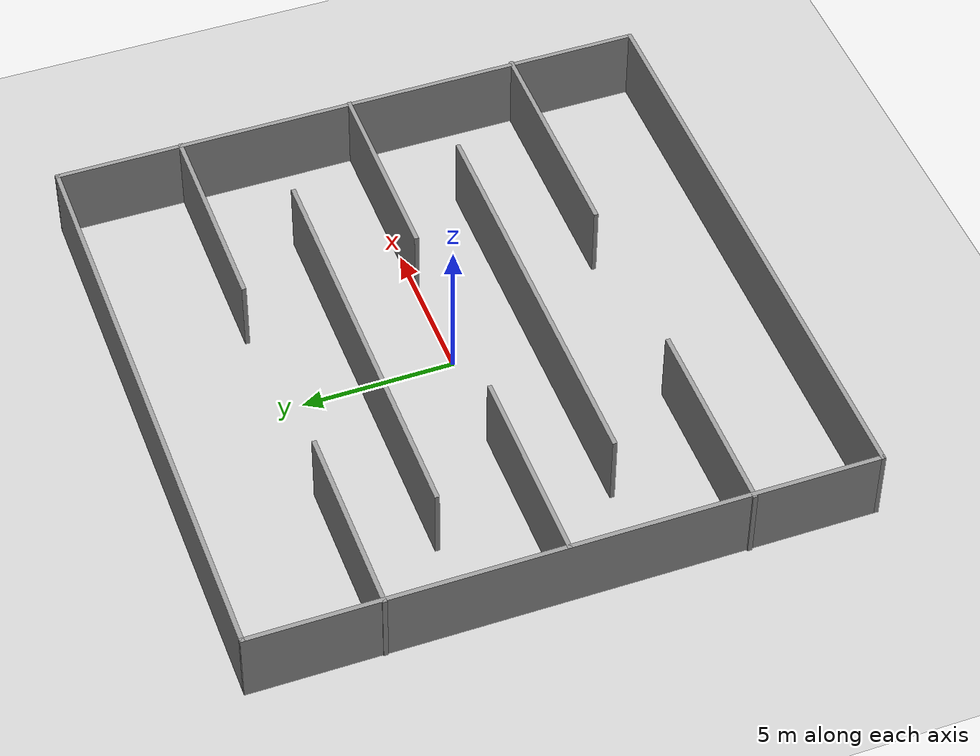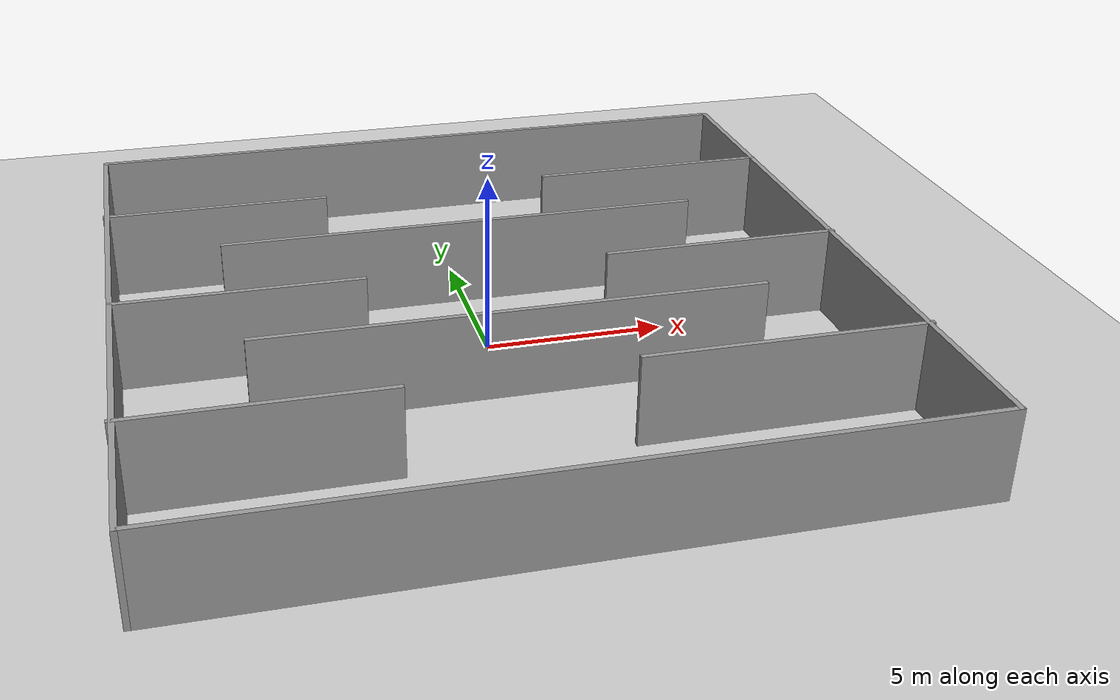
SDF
<sdf version="1.6">
 <world name="default">
  <light name="sun" type="directional">
   <pose>0 0 10 0 -0 0</pose>
   <diffuse>0.8 0.8 0.8 1</diffuse>
   <specular>0.1 0.1 0.1 1</specular>
   <attenuation>
    <range>1000</range>
    <constant>0.9</constant>
    <linear>0.01</linear>
    <quadratic>0.001</quadratic>
   </attenuation>
   <direction>-0.5 0.5 -1</direction>
  </light>
  <model name="ground_plane">
   <static>1</static>
   <link name="link">
    <collision name="collision">
     <geometry><plane><normal>0 0 1</normal><size>100 100</size></plane></geometry>
     <surface><friction><ode><mu>100</mu><mu2>50</mu2></ode></friction></surface>
    </collision>
    <visual name="visual">
     <cast_shadows>0</cast_shadows>
     <geometry><plane><normal>0 0 1</normal><size>100 100</size></plane></geometry>
     <material>
      <script><uri>file://media/materials/scripts/gazebo.material</uri><name>Gazebo/Grey</name></script>
     </material>
    </visual>
   </link>
  </model>
  <gravity>0 0 -9.8</gravity>
  <magnetic_field>6e-06 2.3e-05 -4.2e-05</magnetic_field>
  <atmosphere type="adiabatic"/>
  <physics name="default_physics" default="0" type="ode">
   <max_step_size>0.001</max_step_size>
   <real_time_factor>1</real_time_factor>
   <real_time_update_rate>1000</real_time_update_rate>
  </physics>
  <scene><ambient>0.4 0.4 0.4 1</ambient><background>0.7 0.7 0.7 1</background><shadows>1</shadows></scene>
  <spherical_coordinates>
   <surface_model>EARTH_WGS84</surface_model>
   <latitude_deg>0</latitude_deg>
   <longitude_deg>0</longitude_deg>
   <elevation>0</elevation>
   <heading_deg>0</heading_deg>
  </spherical_coordinates>
  <model name="pp_test_5">
   <pose>0.006807 0 0 0 -0 0</pose>
   <link name="Wall_0">
    <collision name="Wall_0_Collision">
     <geometry><box><size>20.15 0.15 2.5</size></box></geometry>
     <pose>0 0 1.25 0 -0 0</pose>
    </collision>
    <visual name="Wall_0_Visual">
     <pose>0 0 1.25 0 -0 0</pose>
     <geometry><box><size>20.15 0.15 2.5</size></box></geometry>
     <material>
      <script><uri>file://media/materials/scripts/gazebo.material</uri><name>Gazebo/Grey</name></script>
      <ambient>1 1 1 1</ambient>
     </material>
    </visual>
    <pose>-0.006807 10 0 0 -0 0</pose>
   </link>
   <link name="Wall_1">
    <collision name="Wall_1_Collision">
     <geometry><box><size>20.15 0.15 2.5</size></box></geometry>
     <pose>0 0 1.25 0 -0 0</pose>
    </collision>
    <visual name="Wall_1_Visual">
     <pose>0 0 1.25 0 -0 0</pose>
     <geometry><box><size>20.15 0.15 2.5</size></box></geometry>
     <material>
      <script><uri>file://media/materials/scripts/gazebo.material</uri><name>Gazebo/Grey</name></script>
      <ambient>1 1 1 1</ambient>
     </material>
    </visual>
    <pose>9.99319 0 0 0 0 -1.5708</pose>
   </link>
   <link name="Wall_10">
    <collision name="Wall_10_Collision">
     <geometry><box><size>6.75 0.15 2.5</size></box></geometry>
     <pose>0 0 1.25 0 -0 0</pose>
    </collision>
    <visual name="Wall_10_Visual">
     <pose>0 0 1.25 0 -0 0</pose>
     <geometry><box><size>6.75 0.15 2.5</size></box></geometry>
     <material>
      <script><uri>file://media/materials/scripts/gazebo.material</uri><name>Gazebo/Grey</name></script>
      <ambient>1 1 1 1</ambient>
     </material>
    </visual>
    <pose>-6.69925 0.026868 0 0 -0 0</pose>
   </link>
   <link name="Wall_13">
    <collision name="Wall_13_Collision">
     <geometry><box><size>6.75 0.15 2.5</size></box></geometry>
     <pose>0 0 1.25 0 -0 0</pose>
    </collision>
    <visual name="Wall_13_Visual">
     <pose>0 0 1.25 0 -0 0</pose>
     <geometry><box><size>6.75 0.15 2.5</size></box></geometry>
     <material>
      <script><uri>file://media/materials/scripts/gazebo.material</uri><name>Gazebo/Grey</name></script>
      <ambient>1 1 1 1</ambient>
     </material>
    </visual>
    <pose>6.72617 0.009575 0 0 -0 3.14159</pose>
   </link>
   <link name="Wall_15">
    <collision name="Wall_15_Collision">
     <geometry><box><size>13.75 0.15 2.5</size></box></geometry>
     <pose>0 0 1.25 0 -0 0</pose>
    </collision>
    <visual name="Wall_15_Visual">
     <pose>0 0 1.25 0 -0 0</pose>
     <geometry><box><size>13.75 0.15 2.5</size></box></geometry>
     <material>
      <script><uri>file://media/materials/scripts/gazebo.material</uri><name>Gazebo/Grey</name></script>
      <ambient>1 1 1 1</ambient>
     </material>
    </visual>
    <pose>-0.069834 3.01557 0 0 -0 0</pose>
   </link>
   <link name="Wall_17">
    <collision name="Wall_17_Collision">
     <geometry><box><size>13.75 0.15 2.5</size></box></geometry>
     <pose>0 0 1.25 0 -0 0</pose>
    </collision>
    <visual name="Wall_17_Visual">
     <pose>0 0 1.25 0 -0 0</pose>
     <geometry><box><size>13.75 0.15 2.5</size></box></geometry>
     <material>
      <script><uri>file://media/materials/scripts/gazebo.material</uri><name>Gazebo/Grey</name></script>
      <ambient>1 1 1 1</ambient>
     </material>
    </visual>
    <pose>0.079319 -2.69202 0 0 -0 0</pose>
   </link>
   <link name="Wall_19">
    <collision name="Wall_19_Collision">
     <geometry><box><size>6.5 0.15 2.5</size></box></geometry>
     <pose>0 0 1.25 0 -0 0</pose>
    </collision>
    <visual name="Wall_19_Visual">
     <pose>0 0 1.25 0 -0 0</pose>
     <geometry><box><size>6.5 0.15 2.5</size></box></geometry>
     <material>
      <script><uri>file://media/materials/scripts/gazebo.material</uri><name>Gazebo/Grey</name></script>
      <ambient>1 1 1 1</ambient>
     </material>
    </visual>
    <pose>-6.86508 5.74571 0 0 -0 0</pose>
   </link>
   <link name="Wall_2">
    <collision name="Wall_2_Collision">
     <geometry><box><size>20.15 0.15 2.5</size></box></geometry>
     <pose>0 0 1.25 0 -0 0</pose>
    </collision>
    <visual name="Wall_2_Visual">
     <pose>0 0 1.25 0 -0 0</pose>
     <geometry><box><size>20.15 0.15 2.5</size></box></geometry>
     <material>
      <script><uri>file://media/materials/scripts/gazebo.material</uri><name>Gazebo/Grey</name></script>
      <ambient>1 1 1 1</ambient>
     </material>
    </visual>
    <pose>-0.006807 -10 0 0 -0 3.14159</pose>
   </link>
   <link name="Wall_21">
    <collision name="Wall_21_Collision">
     <geometry><box><size>7 0.15 2.5</size></box></geometry>
     <pose>0 0 1.25 0 -0 0</pose>
    </collision>
    <visual name="Wall_21_Visual">
     <pose>0 0 1.25 0 -0 0</pose>
     <geometry><box><size>7 0.15 2.5</size></box></geometry>
     <material>
      <script><uri>file://media/materials/scripts/gazebo.material</uri><name>Gazebo/Grey</name></script>
      <ambient>1 1 1 1</ambient>
     </material>
    </visual>
    <pose>6.59092 5.83771 0 0 -0 3.14159</pose>
   </link>
   <link name="Wall_23">
    <collision name="Wall_23_Collision">
     <geometry><box><size>6.75 0.15 2.5</size></box></geometry>
     <pose>0 0 1.25 0 -0 0</pose>
    </collision>
    <visual name="Wall_23_Visual">
     <pose>0 0 1.25 0 -0 0</pose>
     <geometry><box><size>6.75 0.15 2.5</size></box></geometry>
     <material>
      <script><uri>file://media/materials/scripts/gazebo.material</uri><name>Gazebo/Grey</name></script>
      <ambient>1 1 1 1</ambient>
     </material>
    </visual>
    <pose>-6.76819 -5.8069 0 0 -0 0</pose>
   </link>
   <link name="Wall_25">
    <collision name="Wall_25_Collision">
     <geometry><box><size>7.75 0.15 2.5</size></box></geometry>
     <pose>0 0 1.25 0 -0 0</pose>
    </collision>
    <visual name="Wall_25_Visual">
     <pose>0 0 1.25 0 -0 0</pose>
     <geometry><box><size>7.75 0.15 2.5</size></box></geometry>
     <material>
      <script><uri>file://media/materials/scripts/gazebo.material</uri><name>Gazebo/Grey</name></script>
      <ambient>1 1 1 1</ambient>
     </material>
    </visual>
    <pose>6.26819 -5.74606 0 0 -0 3.14159</pose>
   </link>
   <link name="Wall_3">
    <collision name="Wall_3_Collision">
     <geometry><box><size>20.15 0.15 2.5</size></box></geometry>
     <pose>0 0 1.25 0 -0 0</pose>
    </collision>
    <visual name="Wall_3_Visual">
     <pose>0 0 1.25 0 -0 0</pose>
     <geometry><box><size>20.15 0.15 2.5</size></box></geometry>
     <material>
      <script><uri>file://media/materials/scripts/gazebo.material</uri><name>Gazebo/Grey</name></script>
      <ambient>1 1 1 1</ambient>
     </material>
    </visual>
    <pose>-10.0068 0 0 0 -0 1.5708</pose>
   </link>
   <static>1</static>
  </model>
 </world>
</sdf>
